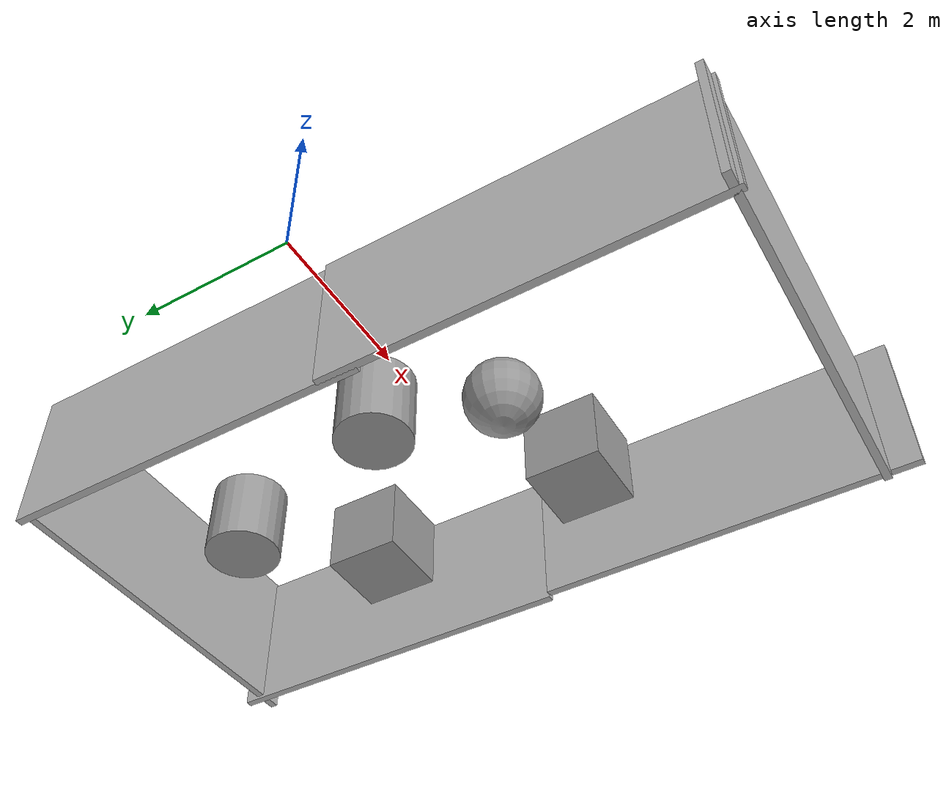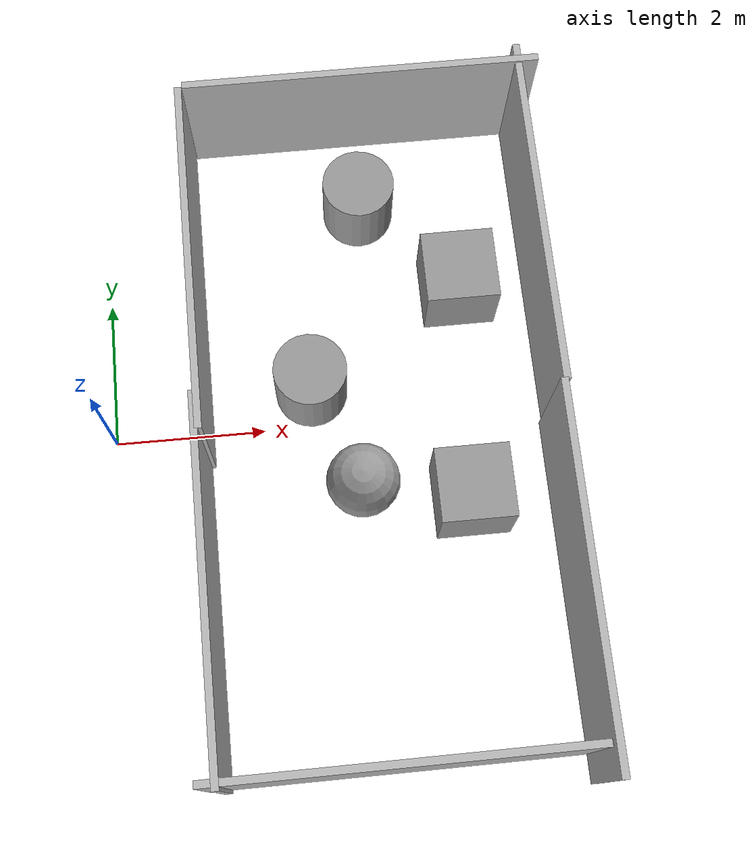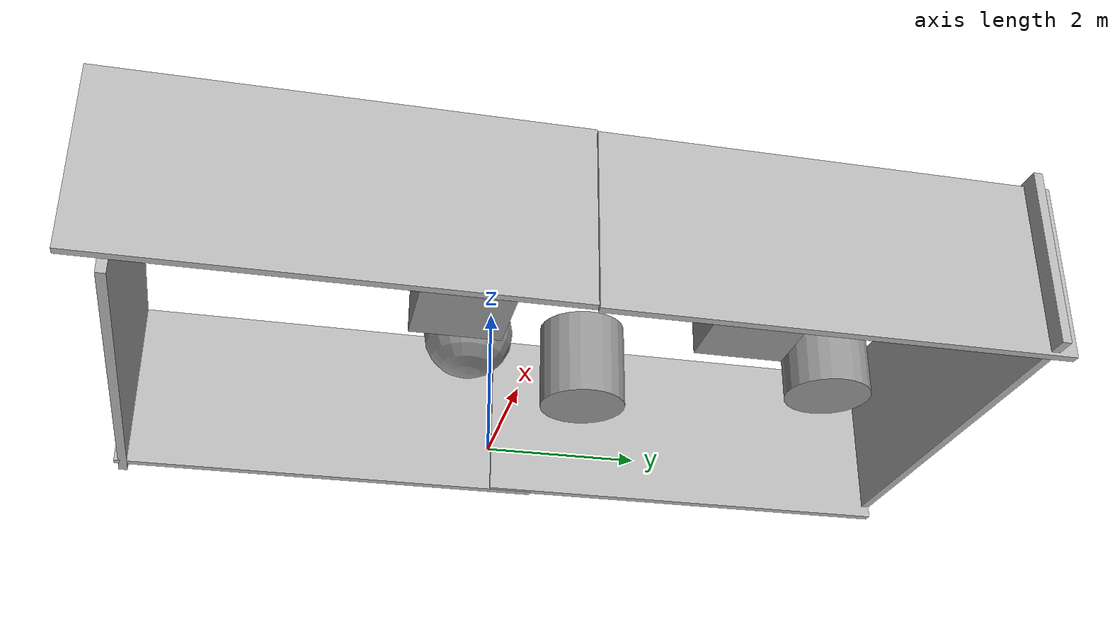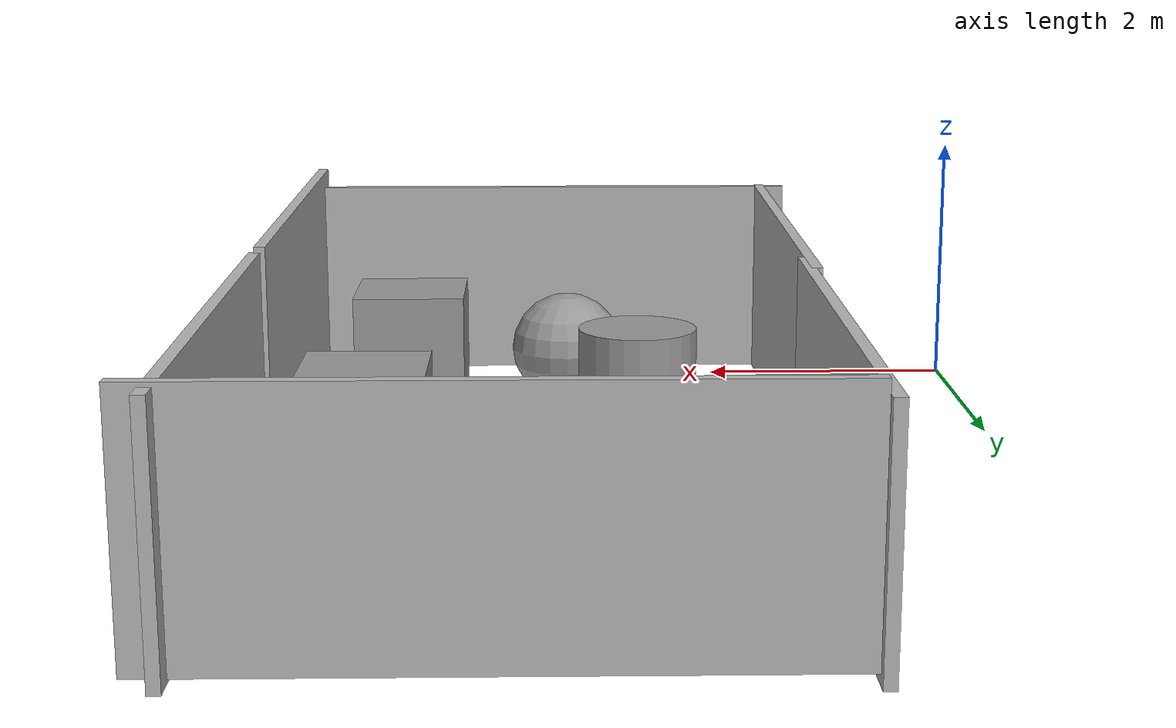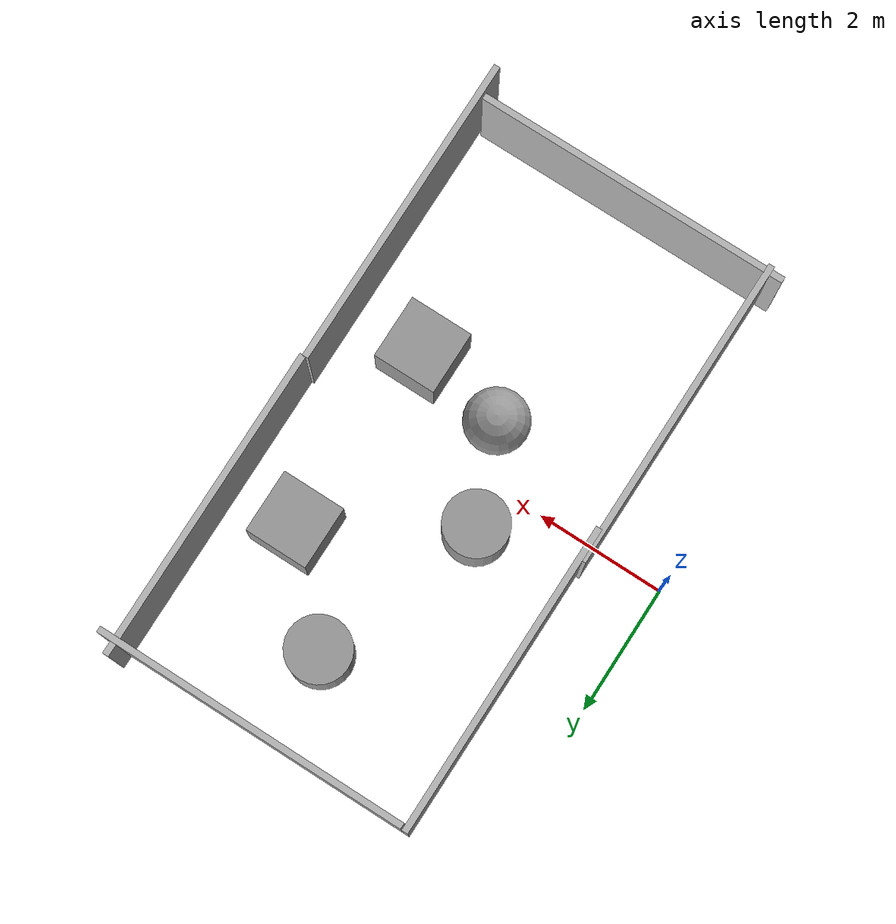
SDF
<?xml version='1.0'?>
<sdf version='1.7'>
  <model name='custom_environment'>
    <link name='link'>
      <self_collide>0</self_collide>
      <enable_wind>0</enable_wind>
      <kinematic>0</kinematic>
      <pose>1.12563 -2.15161 0 0 -0 0</pose>
      <visual name='visual'>
        <geometry>
          <box>
            <size>0.1 5 2</size>
          </box>
        </geometry>
        <material>
          <script>
            <uri>https://fuel.gazebosim.org/1.0/sebbyjp/models/room_wall_2x5m/1/files/material/script</uri>
            <uri>https://fuel.gazebosim.org/1.0/sebbyjp/models/room_wall_2x5m/1/files/material/textures</uri>
            <name>Custom/room_wall_2x5m</name>
          </script>
          <shader type='pixel'/>
        </material>
        <pose>0 0 0 0 -0 0</pose>
        <transparency>0</transparency>
        <cast_shadows>1</cast_shadows>
      </visual>
      <collision name='collision'>
        <laser_retro>0</laser_retro>
        <max_contacts>10</max_contacts>
        <pose>0 0 0 0 -0 0</pose>
        <geometry>
          <box>
            <size>0.1 5 2</size>
          </box>
        </geometry>
        <surface>
          <friction>
            <ode>
              <mu>1</mu>
              <mu2>1</mu2>
              <fdir1>0 0 0</fdir1>
              <slip1>0</slip1>
              <slip2>0</slip2>
            </ode>
            <torsional>
              <coefficient>1</coefficient>
              <patch_radius>0</patch_radius>
              <surface_radius>0</surface_radius>
              <use_patch_radius>1</use_patch_radius>
              <ode>
                <slip>0</slip>
              </ode>
            </torsional>
          </friction>
          <bounce>
            <restitution_coefficient>0</restitution_coefficient>
            <threshold>1e+06</threshold>
          </bounce>
          <contact>
            <collide_without_contact>0</collide_without_contact>
            <collide_without_contact_bitmask>1</collide_without_contact_bitmask>
            <collide_bitmask>1</collide_bitmask>
            <ode>
              <soft_cfm>0</soft_cfm>
              <soft_erp>0.2</soft_erp>
              <kp>1e+13</kp>
              <kd>1</kd>
              <max_vel>0.01</max_vel>
              <min_depth>0</min_depth>
            </ode>
            <bullet>
              <split_impulse>1</split_impulse>
              <split_impulse_penetration_threshold>-0.01</split_impulse_penetration_threshold>
              <soft_cfm>0</soft_cfm>
              <soft_erp>0.2</soft_erp>
              <kp>1e+13</kp>
              <kd>1</kd>
            </bullet>
          </contact>
        </surface>
      </collision>
    </link>
    <link name='link_0'>
      <inertial>
        <mass>1</mass>
        <inertia>
          <ixx>0.145833</ixx>
          <ixy>0</ixy>
          <ixz>0</ixz>
          <iyy>0.145833</iyy>
          <iyz>0</iyz>
          <izz>0.125</izz>
        </inertia>
      </inertial>
      <pose>2.6787 0.650829 0.048252 0 -0 0</pose>
      <visual name='visual'>
        <pose>0 0 0 0 -0 0</pose>
        <geometry>
          <cylinder>
            <radius>0.5</radius>
            <length>1</length>
          </cylinder>
        </geometry>
        <material>
          <lighting>1</lighting>
          <script>
            <uri>file://media/materials/scripts/gazebo.material</uri>
            <name>Gazebo/Grey</name>
          </script>
          <shader type='pixel'/>
        </material>
        <transparency>0</transparency>
        <cast_shadows>1</cast_shadows>
      </visual>
      <collision name='collision'>
        <laser_retro>0</laser_retro>
        <max_contacts>10</max_contacts>
        <pose>0 0 0 0 -0 0</pose>
        <geometry>
          <cylinder>
            <radius>0.5</radius>
            <length>1</length>
          </cylinder>
        </geometry>
        <surface>
          <friction>
            <ode>
              <mu>1</mu>
              <mu2>1</mu2>
              <fdir1>0 0 0</fdir1>
              <slip1>0</slip1>
              <slip2>0</slip2>
            </ode>
            <torsional>
              <coefficient>1</coefficient>
              <patch_radius>0</patch_radius>
              <surface_radius>0</surface_radius>
              <use_patch_radius>1</use_patch_radius>
              <ode>
                <slip>0</slip>
              </ode>
            </torsional>
          </friction>
          <bounce>
            <restitution_coefficient>0</restitution_coefficient>
            <threshold>1e+06</threshold>
          </bounce>
          <contact>
            <collide_without_contact>0</collide_without_contact>
            <collide_without_contact_bitmask>1</collide_without_contact_bitmask>
            <collide_bitmask>1</collide_bitmask>
            <ode>
              <soft_cfm>0</soft_cfm>
              <soft_erp>0.2</soft_erp>
              <kp>1e+13</kp>
              <kd>1</kd>
              <max_vel>0.01</max_vel>
              <min_depth>0</min_depth>
            </ode>
            <bullet>
              <split_impulse>1</split_impulse>
              <split_impulse_penetration_threshold>-0.01</split_impulse_penetration_threshold>
              <soft_cfm>0</soft_cfm>
              <soft_erp>0.2</soft_erp>
              <kp>1e+13</kp>
              <kd>1</kd>
            </bullet>
          </contact>
        </surface>
      </collision>
    </link>
    <link name='link_2'>
      <inertial>
        <mass>1</mass>
        <inertia>
          <ixx>0.166667</ixx>
          <ixy>0</ixy>
          <ixz>0</ixz>
          <iyy>0.166667</iyy>
          <iyz>0</iyz>
          <izz>0.166667</izz>
        </inertia>
      </inertial>
      <pose>4.70441 -1.0964 0.048252 0 -0 0</pose>
      <visual name='visual'>
        <pose>0 0 0 0 -0 0</pose>
        <geometry>
          <box>
            <size>1 1 1</size>
          </box>
        </geometry>
        <material>
          <lighting>1</lighting>
          <script>
            <uri>file://media/materials/scripts/gazebo.material</uri>
            <name>Gazebo/Grey</name>
          </script>
          <shader type='pixel'/>
        </material>
        <transparency>0</transparency>
        <cast_shadows>1</cast_shadows>
      </visual>
      <collision name='collision'>
        <laser_retro>0</laser_retro>
        <max_contacts>10</max_contacts>
        <pose>0 0 0 0 -0 0</pose>
        <geometry>
          <box>
            <size>1 1 1</size>
          </box>
        </geometry>
        <surface>
          <friction>
            <ode>
              <mu>1</mu>
              <mu2>1</mu2>
              <fdir1>0 0 0</fdir1>
              <slip1>0</slip1>
              <slip2>0</slip2>
            </ode>
            <torsional>
              <coefficient>1</coefficient>
              <patch_radius>0</patch_radius>
              <surface_radius>0</surface_radius>
              <use_patch_radius>1</use_patch_radius>
              <ode>
                <slip>0</slip>
              </ode>
            </torsional>
          </friction>
          <bounce>
            <restitution_coefficient>0</restitution_coefficient>
            <threshold>1e+06</threshold>
          </bounce>
          <contact>
            <collide_without_contact>0</collide_without_contact>
            <collide_without_contact_bitmask>1</collide_without_contact_bitmask>
            <collide_bitmask>1</collide_bitmask>
            <ode>
              <soft_cfm>0</soft_cfm>
              <soft_erp>0.2</soft_erp>
              <kp>1e+13</kp>
              <kd>1</kd>
              <max_vel>0.01</max_vel>
              <min_depth>0</min_depth>
            </ode>
            <bullet>
              <split_impulse>1</split_impulse>
              <split_impulse_penetration_threshold>-0.01</split_impulse_penetration_threshold>
              <soft_cfm>0</soft_cfm>
              <soft_erp>0.2</soft_erp>
              <kp>1e+13</kp>
              <kd>1</kd>
            </bullet>
          </contact>
        </surface>
      </collision>
    </link>
    <link name='link_3'>
      <inertial>
        <mass>1</mass>
        <inertia>
          <ixx>0.1</ixx>
          <ixy>0</ixy>
          <ixz>0</ixz>
          <iyy>0.1</iyy>
          <iyz>0</iyz>
          <izz>0.1</izz>
        </inertia>
      </inertial>
      <pose>3.26378 -0.814242 0.048252 0 -0 0</pose>
      <visual name='visual'>
        <pose>0 0 0 0 -0 0</pose>
        <geometry>
          <sphere>
            <radius>0.5</radius>
          </sphere>
        </geometry>
        <material>
          <lighting>1</lighting>
          <script>
            <uri>file://media/materials/scripts/gazebo.material</uri>
            <name>Gazebo/Grey</name>
          </script>
          <shader type='pixel'/>
        </material>
        <transparency>0</transparency>
        <cast_shadows>1</cast_shadows>
      </visual>
      <collision name='collision'>
        <laser_retro>0</laser_retro>
        <max_contacts>10</max_contacts>
        <pose>0 0 0 0 -0 0</pose>
        <geometry>
          <sphere>
            <radius>0.5</radius>
          </sphere>
        </geometry>
        <surface>
          <friction>
            <ode>
              <mu>1</mu>
              <mu2>1</mu2>
              <fdir1>0 0 0</fdir1>
              <slip1>0</slip1>
              <slip2>0</slip2>
            </ode>
            <torsional>
              <coefficient>1</coefficient>
              <patch_radius>0</patch_radius>
              <surface_radius>0</surface_radius>
              <use_patch_radius>1</use_patch_radius>
              <ode>
                <slip>0</slip>
              </ode>
            </torsional>
          </friction>
          <bounce>
            <restitution_coefficient>0</restitution_coefficient>
            <threshold>1e+06</threshold>
          </bounce>
          <contact>
            <collide_without_contact>0</collide_without_contact>
            <collide_without_contact_bitmask>1</collide_without_contact_bitmask>
            <collide_bitmask>1</collide_bitmask>
            <ode>
              <soft_cfm>0</soft_cfm>
              <soft_erp>0.2</soft_erp>
              <kp>1e+13</kp>
              <kd>1</kd>
              <max_vel>0.01</max_vel>
              <min_depth>0</min_depth>
            </ode>
            <bullet>
              <split_impulse>1</split_impulse>
              <split_impulse_penetration_threshold>-0.01</split_impulse_penetration_threshold>
              <soft_cfm>0</soft_cfm>
              <soft_erp>0.2</soft_erp>
              <kp>1e+13</kp>
              <kd>1</kd>
            </bullet>
          </contact>
        </surface>
      </collision>
    </link>
    <link name='link_4'>
      <inertial>
        <mass>1</mass>
        <inertia>
          <ixx>0.145833</ixx>
          <ixy>0</ixy>
          <ixz>0</ixz>
          <iyy>0.145833</iyy>
          <iyz>0</iyz>
          <izz>0.125</izz>
        </inertia>
      </inertial>
      <pose>3.58405 3.34084 0.048252 0 -0 0</pose>
      <visual name='visual'>
        <pose>0 0 0 0 -0 0</pose>
        <geometry>
          <cylinder>
            <radius>0.5</radius>
            <length>1</length>
          </cylinder>
        </geometry>
        <material>
          <lighting>1</lighting>
          <script>
            <uri>file://media/materials/scripts/gazebo.material</uri>
            <name>Gazebo/Grey</name>
          </script>
          <shader type='pixel'/>
        </material>
        <transparency>0</transparency>
        <cast_shadows>1</cast_shadows>
      </visual>
      <collision name='collision'>
        <laser_retro>0</laser_retro>
        <max_contacts>10</max_contacts>
        <pose>0 0 0 0 -0 0</pose>
        <geometry>
          <cylinder>
            <radius>0.5</radius>
            <length>1</length>
          </cylinder>
        </geometry>
        <surface>
          <friction>
            <ode>
              <mu>1</mu>
              <mu2>1</mu2>
              <fdir1>0 0 0</fdir1>
              <slip1>0</slip1>
              <slip2>0</slip2>
            </ode>
            <torsional>
              <coefficient>1</coefficient>
              <patch_radius>0</patch_radius>
              <surface_radius>0</surface_radius>
              <use_patch_radius>1</use_patch_radius>
              <ode>
                <slip>0</slip>
              </ode>
            </torsional>
          </friction>
          <bounce>
            <restitution_coefficient>0</restitution_coefficient>
            <threshold>1e+06</threshold>
          </bounce>
          <contact>
            <collide_without_contact>0</collide_without_contact>
            <collide_without_contact_bitmask>1</collide_without_contact_bitmask>
            <collide_bitmask>1</collide_bitmask>
            <ode>
              <soft_cfm>0</soft_cfm>
              <soft_erp>0.2</soft_erp>
              <kp>1e+13</kp>
              <kd>1</kd>
              <max_vel>0.01</max_vel>
              <min_depth>0</min_depth>
            </ode>
            <bullet>
              <split_impulse>1</split_impulse>
              <split_impulse_penetration_threshold>-0.01</split_impulse_penetration_threshold>
              <soft_cfm>0</soft_cfm>
              <soft_erp>0.2</soft_erp>
              <kp>1e+13</kp>
              <kd>1</kd>
            </bullet>
          </contact>
        </surface>
      </collision>
    </link>
    <link name='link_5'>
      <inertial>
        <mass>1</mass>
        <inertia>
          <ixx>0.166667</ixx>
          <ixy>0</ixy>
          <ixz>0</ixz>
          <iyy>0.166667</iyy>
          <iyz>0</iyz>
          <izz>0.166667</izz>
        </inertia>
      </inertial>
      <pose>4.86519 1.98474 0.048252 0 -0 0</pose>
      <visual name='visual'>
        <pose>0 0 0 0 -0 0</pose>
        <geometry>
          <box>
            <size>1 1 1</size>
          </box>
        </geometry>
        <material>
          <lighting>1</lighting>
          <script>
            <uri>file://media/materials/scripts/gazebo.material</uri>
            <name>Gazebo/Grey</name>
          </script>
          <shader type='pixel'/>
        </material>
        <transparency>0</transparency>
        <cast_shadows>1</cast_shadows>
      </visual>
      <collision name='collision'>
        <laser_retro>0</laser_retro>
        <max_contacts>10</max_contacts>
        <pose>0 0 0 0 -0 0</pose>
        <geometry>
          <box>
            <size>1 1 1</size>
          </box>
        </geometry>
        <surface>
          <friction>
            <ode>
              <mu>1</mu>
              <mu2>1</mu2>
              <fdir1>0 0 0</fdir1>
              <slip1>0</slip1>
              <slip2>0</slip2>
            </ode>
            <torsional>
              <coefficient>1</coefficient>
              <patch_radius>0</patch_radius>
              <surface_radius>0</surface_radius>
              <use_patch_radius>1</use_patch_radius>
              <ode>
                <slip>0</slip>
              </ode>
            </torsional>
          </friction>
          <bounce>
            <restitution_coefficient>0</restitution_coefficient>
            <threshold>1e+06</threshold>
          </bounce>
          <contact>
            <collide_without_contact>0</collide_without_contact>
            <collide_without_contact_bitmask>1</collide_without_contact_bitmask>
            <collide_bitmask>1</collide_bitmask>
            <ode>
              <soft_cfm>0</soft_cfm>
              <soft_erp>0.2</soft_erp>
              <kp>1e+13</kp>
              <kd>1</kd>
              <max_vel>0.01</max_vel>
              <min_depth>0</min_depth>
            </ode>
            <bullet>
              <split_impulse>1</split_impulse>
              <split_impulse_penetration_threshold>-0.01</split_impulse_penetration_threshold>
              <soft_cfm>0</soft_cfm>
              <soft_erp>0.2</soft_erp>
              <kp>1e+13</kp>
              <kd>1</kd>
            </bullet>
          </contact>
        </surface>
      </collision>
    </link>
    <model name='room_wall_2x5m'>
      <link name='link'>
        <visual name='visual'>
          <geometry>
            <box>
              <size>0.1 5 2</size>
            </box>
          </geometry>
          <material>
            <script>
              <uri>https://fuel.gazebosim.org/1.0/sebbyjp/models/room_wall_2x5m/1/files/material/script</uri>
              <uri>https://fuel.gazebosim.org/1.0/sebbyjp/models/room_wall_2x5m/1/files/material/textures</uri>
              <name>Custom/room_wall_2x5m</name>
            </script>
          </material>
        </visual>
        <collision name='collision'>
          <geometry>
            <box>
              <size>0.1 5 2</size>
            </box>
          </geometry>
        </collision>
      </link>
      <static>1</static>
      <allow_auto_disable>1</allow_auto_disable>
      <pose>3.37235 -4.54392 0 0 0 -1.56625</pose>
    </model>
    <model name='room_wall_2x5m_0'>
      <link name='link'>
        <visual name='visual'>
          <geometry>
            <box>
              <size>0.1 5 2</size>
            </box>
          </geometry>
          <material>
            <script>
              <uri>https://fuel.gazebosim.org/1.0/sebbyjp/models/room_wall_2x5m/1/files/material/script</uri>
              <uri>https://fuel.gazebosim.org/1.0/sebbyjp/models/room_wall_2x5m/1/files/material/textures</uri>
              <name>Custom/room_wall_2x5m</name>
            </script>
          </material>
        </visual>
        <collision name='collision'>
          <geometry>
            <box>
              <size>0.1 5 2</size>
            </box>
          </geometry>
        </collision>
      </link>
      <static>1</static>
      <allow_auto_disable>1</allow_auto_disable>
      <pose>5.93523 -2.46884 0.138339 0 -0 0</pose>
    </model>
    <model name='room_wall_2x5m_1'>
      <link name='link'>
        <visual name='visual'>
          <geometry>
            <box>
              <size>0.1 5 2</size>
            </box>
          </geometry>
          <material>
            <script>
              <uri>https://fuel.gazebosim.org/1.0/sebbyjp/models/room_wall_2x5m/1/files/material/script</uri>
              <uri>https://fuel.gazebosim.org/1.0/sebbyjp/models/room_wall_2x5m/1/files/material/textures</uri>
              <name>Custom/room_wall_2x5m</name>
            </script>
          </material>
        </visual>
        <collision name='collision'>
          <geometry>
            <box>
              <size>0.1 5 2</size>
            </box>
          </geometry>
        </collision>
      </link>
      <static>1</static>
      <allow_auto_disable>1</allow_auto_disable>
      <pose>5.97556 2.52272 0.089944 0 -0 0.001786</pose>
    </model>
    <model name='room_wall_2x5m_2'>
      <link name='link'>
        <visual name='visual'>
          <geometry>
            <box>
              <size>0.1 5 2</size>
            </box>
          </geometry>
          <material>
            <script>
              <uri>https://fuel.gazebosim.org/1.0/sebbyjp/models/room_wall_2x5m/1/files/material/script</uri>
              <uri>https://fuel.gazebosim.org/1.0/sebbyjp/models/room_wall_2x5m/1/files/material/textures</uri>
              <name>Custom/room_wall_2x5m</name>
            </script>
          </material>
        </visual>
        <collision name='collision'>
          <geometry>
            <box>
              <size>0.1 5 2</size>
            </box>
          </geometry>
        </collision>
      </link>
      <static>1</static>
      <allow_auto_disable>1</allow_auto_disable>
      <pose>3.74696 4.77575 0.126032 0 0 -1.57105</pose>
    </model>
    <model name='room_wall_2x5m_3'>
      <link name='link'>
        <visual name='visual'>
          <geometry>
            <box>
              <size>0.1 5 2</size>
            </box>
          </geometry>
          <material>
            <script>
              <uri>https://fuel.gazebosim.org/1.0/sebbyjp/models/room_wall_2x5m/1/files/material/script</uri>
              <uri>https://fuel.gazebosim.org/1.0/sebbyjp/models/room_wall_2x5m/1/files/material/textures</uri>
              <name>Custom/room_wall_2x5m</name>
            </script>
          </material>
        </visual>
        <collision name='collision'>
          <geometry>
            <box>
              <size>0.1 5 2</size>
            </box>
          </geometry>
        </collision>
      </link>
      <static>1</static>
      <allow_auto_disable>1</allow_auto_disable>
      <pose>1.18041 2.3271 0 0 -0 0</pose>
    </model>
    <static>1</static>
    <allow_auto_disable>1</allow_auto_disable>
  </model>
</sdf>
